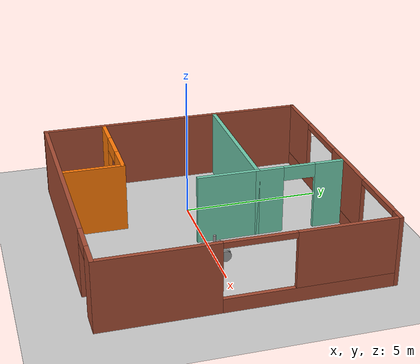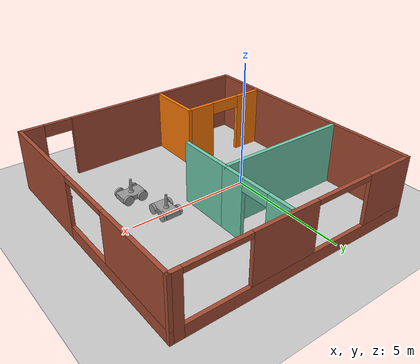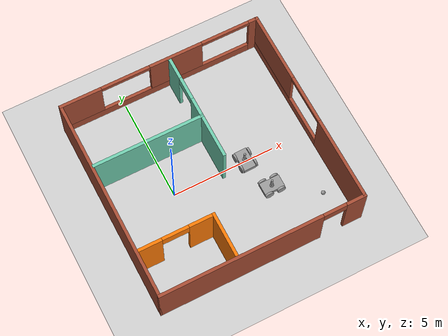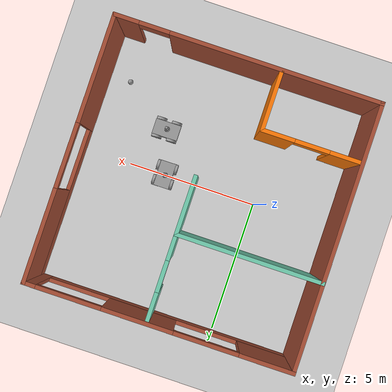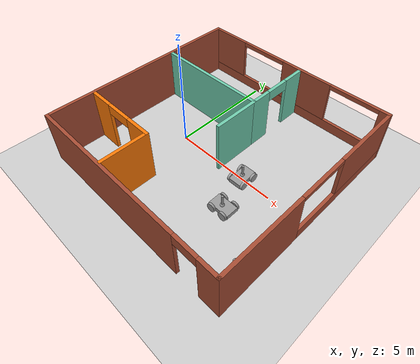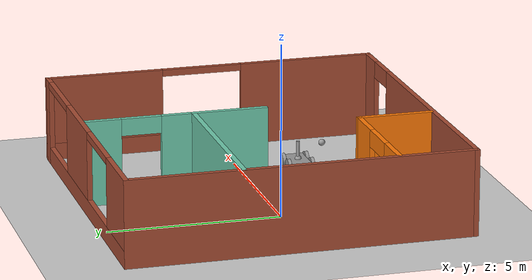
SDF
<sdf version="1.7">
 <world name="default">
  <plugin name="hello" filename="libhello.so"/>
  <light name="sun" type="directional">
   <pose>0 0 10 0 -0 0</pose>
   <diffuse>0.8 0.8 0.8 1</diffuse>
   <specular>0.2 0.2 0.2 1</specular>
   <attenuation>
    <range>1000</range>
    <constant>0.9</constant>
    <linear>0.01</linear>
    <quadratic>0.001</quadratic>
   </attenuation>
   <direction>-0.5 0.1 -0.9</direction>
   <spot><inner_angle>0</inner_angle><outer_angle>0</outer_angle><falloff>0</falloff></spot>
  </light>
  <model name="ground_plane">
   <static>1</static>
   <link name="link">
    <collision name="collision">
     <geometry><plane><normal>0 0 1</normal><size>100 100</size></plane></geometry>
     <surface>
      <contact><collide_bitmask>65535</collide_bitmask></contact>
      <friction><ode><mu>100</mu><mu2>50</mu2></ode></friction>
     </surface>
    </collision>
    <visual name="visual">
     <cast_shadows>0</cast_shadows>
     <geometry><plane><normal>0 0 1</normal><size>100 100</size></plane></geometry>
     <material>
      <script><uri>file://media/materials/scripts/gazebo.material</uri><name>Gazebo/Grey</name></script>
     </material>
    </visual>
   </link>
  </model>
  <gravity>0 0 -9.8</gravity>
  <magnetic_field>6e-06 2.3e-05 -4.2e-05</magnetic_field>
  <atmosphere type="adiabatic"/>
  <physics type="ode">
   <max_step_size>0.001</max_step_size>
   <real_time_factor>1</real_time_factor>
   <real_time_update_rate>1000</real_time_update_rate>
  </physics>
  <scene><ambient>0.4 0.4 0.4 1</ambient><background>0.7 0.7 0.7 1</background><shadows>1</shadows></scene>
  <spherical_coordinates>
   <surface_model>EARTH_WGS84</surface_model>
   <latitude_deg>0</latitude_deg>
   <longitude_deg>0</longitude_deg>
   <elevation>0</elevation>
   <heading_deg>0</heading_deg>
  </spherical_coordinates>
  <model name="Building">
   <pose>1.94951 0.22259 0 0 -0 0</pose>
   <link name="Wall_10">
    <pose>-0 4.925 0 0 -0 3.14159</pose>
    <visual name="Wall_10_Visual_0">
     <pose>-4.74655 0 1.25 0 -0 0</pose>
     <geometry><box><size>0.506908 0.15 2.5</size></box></geometry>
     <material>
      <script><uri>file://media/materials/scripts/gazebo.material</uri><name>Gazebo/Bricks</name></script>
      <ambient>1 1 1 1</ambient>
     </material>
     <meta><layer>0</layer></meta>
    </visual>
    <collision name="Wall_10_Collision_0">
     <geometry><box><size>0.506908 0.15 2.5</size></box></geometry>
     <pose>-4.74655 0 1.25 0 -0 0</pose>
    </collision>
    <visual name="Wall_10_Visual_1">
     <pose>0.253454 0 0.25 0 -0 0</pose>
     <geometry><box><size>9.49309 0.15 0.5</size></box></geometry>
     <material>
      <script><uri>file://media/materials/scripts/gazebo.material</uri><name>Gazebo/Bricks</name></script>
      <ambient>1 1 1 1</ambient>
     </material>
     <meta><layer>0</layer></meta>
    </visual>
    <collision name="Wall_10_Collision_1">
     <geometry><box><size>9.49309 0.15 0.5</size></box></geometry>
     <pose>0.253454 0 0.25 0 -0 0</pose>
    </collision>
    <visual name="Wall_10_Visual_2">
     <pose>-0.778092 0 1.5 0 -0 0</pose>
     <geometry><box><size>2.63 0.15 2</size></box></geometry>
     <material>
      <script><uri>file://media/materials/scripts/gazebo.material</uri><name>Gazebo/Bricks</name></script>
      <ambient>1 1 1 1</ambient>
     </material>
     <meta><layer>0</layer></meta>
    </visual>
    <collision name="Wall_10_Collision_2">
     <geometry><box><size>2.63 0.15 2</size></box></geometry>
     <pose>-0.778092 0 1.5 0 -0 0</pose>
    </collision>
    <visual name="Wall_10_Visual_3">
     <pose>3.96845 0 1.5 0 -0 0</pose>
     <geometry><box><size>2.06309 0.15 2</size></box></geometry>
     <material>
      <script><uri>file://media/materials/scripts/gazebo.material</uri><name>Gazebo/Bricks</name></script>
      <ambient>1 1 1 1</ambient>
     </material>
     <meta><layer>0</layer></meta>
    </visual>
    <collision name="Wall_10_Collision_3">
     <geometry><box><size>2.06309 0.15 2</size></box></geometry>
     <pose>3.96845 0 1.5 0 -0 0</pose>
    </collision>
    <visual name="Wall_10_Visual_4">
     <pose>-3.29309 0 2.4 0 -0 0</pose>
     <geometry><box><size>2.4 0.15 0.2</size></box></geometry>
     <material>
      <script><uri>file://media/materials/scripts/gazebo.material</uri><name>Gazebo/Bricks</name></script>
      <ambient>1 1 1 1</ambient>
     </material>
     <meta><layer>0</layer></meta>
    </visual>
    <collision name="Wall_10_Collision_4">
     <geometry><box><size>2.4 0.15 0.2</size></box></geometry>
     <pose>-3.29309 0 2.4 0 -0 0</pose>
    </collision>
    <visual name="Wall_10_Visual_5">
     <pose>1.73691 0 2.4 0 -0 0</pose>
     <geometry><box><size>2.4 0.15 0.2</size></box></geometry>
     <material>
      <script><uri>file://media/materials/scripts/gazebo.material</uri><name>Gazebo/Bricks</name></script>
      <ambient>1 1 1 1</ambient>
     </material>
     <meta><layer>0</layer></meta>
    </visual>
    <collision name="Wall_10_Collision_5">
     <geometry><box><size>2.4 0.15 0.2</size></box></geometry>
     <pose>1.73691 0 2.4 0 -0 0</pose>
    </collision>
   </link>
   <link name="Wall_12">
    <collision name="Wall_12_Collision">
     <geometry><box><size>10 0.15 2.5</size></box></geometry>
     <pose>0 0 1.25 0 -0 0</pose>
    </collision>
    <visual name="Wall_12_Visual">
     <pose>0 0 1.25 0 -0 0</pose>
     <geometry><box><size>10 0.15 2.5</size></box></geometry>
     <material>
      <script><uri>file://media/materials/scripts/gazebo.material</uri><name>Gazebo/Bricks</name></script>
      <ambient>1 1 1 1</ambient>
     </material>
     <meta><layer>0</layer></meta>
    </visual>
    <pose>-4.925 -0 0 0 -0 1.5708</pose>
   </link>
   <link name="Wall_22">
    <pose>-3.0416 -2.72457 0 0 -0 0</pose>
    <visual name="Wall_22_Visual_0">
     <pose>-1.27765 0 1.25 0 -0 0</pose>
     <geometry><box><size>1.19469 0.15 2.5</size></box></geometry>
     <material>
      <script><uri>file://media/materials/scripts/gazebo.material</uri><name>Gazebo/Grey</name></script>
      <ambient>0.996078 0.47451 0.0196078 1</ambient>
     </material>
     <meta><layer>0</layer></meta>
    </visual>
    <collision name="Wall_22_Collision_0">
     <geometry><box><size>1.19469 0.15 2.5</size></box></geometry>
     <pose>-1.27765 0 1.25 0 -0 0</pose>
    </collision>
    <visual name="Wall_22_Visual_1">
     <pose>1.23734 0 1.25 0 -0 0</pose>
     <geometry><box><size>1.27531 0.15 2.5</size></box></geometry>
     <material>
      <script><uri>file://media/materials/scripts/gazebo.material</uri><name>Gazebo/Grey</name></script>
      <ambient>0.996078 0.47451 0.0196078 1</ambient>
     </material>
     <meta><layer>0</layer></meta>
    </visual>
    <collision name="Wall_22_Collision_1">
     <geometry><box><size>1.27531 0.15 2.5</size></box></geometry>
     <pose>1.23734 0 1.25 0 -0 0</pose>
    </collision>
    <visual name="Wall_22_Visual_2">
     <pose>-0.040311 0 2.25 0 -0 0</pose>
     <geometry><box><size>1.28 0.15 0.5</size></box></geometry>
     <material>
      <script><uri>file://media/materials/scripts/gazebo.material</uri><name>Gazebo/Grey</name></script>
      <ambient>0.996078 0.47451 0.0196078 1</ambient>
     </material>
     <meta><layer>0</layer></meta>
    </visual>
    <collision name="Wall_22_Collision_2">
     <geometry><box><size>1.28 0.15 0.5</size></box></geometry>
     <pose>-0.040311 0 2.25 0 -0 0</pose>
    </collision>
   </link>
   <link name="Wall_27">
    <collision name="Wall_27_Collision">
     <geometry><box><size>2.25 0.15 2.5</size></box></geometry>
     <pose>0 0 1.25 0 -0 0</pose>
    </collision>
    <visual name="Wall_27_Visual">
     <pose>0 0 1.25 0 -0 0</pose>
     <geometry><box><size>2.25 0.15 2.5</size></box></geometry>
     <material>
      <script><uri>file://media/materials/scripts/gazebo.material</uri><name>Gazebo/Grey</name></script>
      <ambient>0.996078 0.47451 0.0196078 1</ambient>
     </material>
     <meta><layer>0</layer></meta>
    </visual>
    <pose>-1.2416 -3.77457 0 0 -0 -1.5708</pose>
   </link>
   <link name="Wall_29">
    <collision name="Wall_29_Collision">
     <geometry><box><size>5.5 0.15 2.5</size></box></geometry>
     <pose>0 0 1.25 0 -0 0</pose>
    </collision>
    <visual name="Wall_29_Visual">
     <pose>0 0 1.25 0 -0 0</pose>
     <geometry><box><size>5.5 0.15 2.5</size></box></geometry>
     <material>
      <script><uri>file://media/materials/scripts/gazebo.material</uri><name>Gazebo/Grey</name></script>
      <ambient>0.435294 0.796078 0.67451 1</ambient>
     </material>
     <meta><layer>0</layer></meta>
    </visual>
    <pose>-2.23191 1.66808 0 0 -0 0</pose>
   </link>
   <link name="Wall_3">
    <pose>-0 -4.925 0 0 -0 0</pose>
    <visual name="Wall_3_Visual_0">
     <pose>-1.05345 0 1.25 0 -0 0</pose>
     <geometry><box><size>7.89309 0.15 2.5</size></box></geometry>
     <material>
      <script><uri>file://media/materials/scripts/gazebo.material</uri><name>Gazebo/Bricks</name></script>
      <ambient>1 1 1 1</ambient>
     </material>
     <meta><layer>0</layer></meta>
    </visual>
    <collision name="Wall_3_Collision_0">
     <geometry><box><size>7.89309 0.15 2.5</size></box></geometry>
     <pose>-1.05345 0 1.25 0 -0 0</pose>
    </collision>
    <visual name="Wall_3_Visual_1">
     <pose>4.51155 0 1.25 0 -0 0</pose>
     <geometry><box><size>0.976908 0.15 2.5</size></box></geometry>
     <material>
      <script><uri>file://media/materials/scripts/gazebo.material</uri><name>Gazebo/Bricks</name></script>
      <ambient>1 1 1 1</ambient>
     </material>
     <meta><layer>0</layer></meta>
    </visual>
    <collision name="Wall_3_Collision_1">
     <geometry><box><size>0.976908 0.15 2.5</size></box></geometry>
     <pose>4.51155 0 1.25 0 -0 0</pose>
    </collision>
    <visual name="Wall_3_Visual_2">
     <pose>3.45809 0 2.25 0 -0 0</pose>
     <geometry><box><size>1.13 0.15 0.5</size></box></geometry>
     <material>
      <script><uri>file://media/materials/scripts/gazebo.material</uri><name>Gazebo/Bricks</name></script>
      <ambient>1 1 1 1</ambient>
     </material>
     <meta><layer>0</layer></meta>
    </visual>
    <collision name="Wall_3_Collision_2">
     <geometry><box><size>1.13 0.15 0.5</size></box></geometry>
     <pose>3.45809 0 2.25 0 -0 0</pose>
    </collision>
   </link>
   <link name="Wall_31">
    <collision name="Wall_31_Collision">
     <geometry><box><size>2.25 0.15 2.5</size></box></geometry>
     <pose>0 0 1.25 0 -0 0</pose>
    </collision>
    <visual name="Wall_31_Visual">
     <pose>0 0 1.25 0 -0 0</pose>
     <geometry><box><size>2.25 0.15 2.5</size></box></geometry>
     <material>
      <script><uri>file://media/materials/scripts/gazebo.material</uri><name>Gazebo/Grey</name></script>
      <ambient>0.435294 0.796078 0.67451 1</ambient>
     </material>
     <meta><layer>0</layer></meta>
    </visual>
    <pose>0.443092 0.618082 0 0 -0 -1.5708</pose>
   </link>
   <link name="Wall_34">
    <pose>0.443092 3.21808 0 0 -0 1.5708</pose>
    <visual name="Wall_34_Visual_0">
     <pose>-1.11 0 1.25 0 -0 0</pose>
     <geometry><box><size>1.03 0.15 2.5</size></box></geometry>
     <material>
      <script><uri>file://media/materials/scripts/gazebo.material</uri><name>Gazebo/Grey</name></script>
      <ambient>0.435294 0.796078 0.67451 1</ambient>
     </material>
     <meta><layer>0</layer></meta>
    </visual>
    <collision name="Wall_34_Collision_0">
     <geometry><box><size>1.03 0.15 2.5</size></box></geometry>
     <pose>-1.11 0 1.25 0 -0 0</pose>
    </collision>
    <visual name="Wall_34_Visual_1">
     <pose>1.095 0 1.25 0 -0 0</pose>
     <geometry><box><size>1.06 0.15 2.5</size></box></geometry>
     <material>
      <script><uri>file://media/materials/scripts/gazebo.material</uri><name>Gazebo/Grey</name></script>
      <ambient>0.435294 0.796078 0.67451 1</ambient>
     </material>
     <meta><layer>0</layer></meta>
    </visual>
    <collision name="Wall_34_Collision_1">
     <geometry><box><size>1.06 0.15 2.5</size></box></geometry>
     <pose>1.095 0 1.25 0 -0 0</pose>
    </collision>
    <visual name="Wall_34_Visual_2">
     <pose>-0.015 0 2.25 0 -0 0</pose>
     <geometry><box><size>1.16 0.15 0.5</size></box></geometry>
     <material>
      <script><uri>file://media/materials/scripts/gazebo.material</uri><name>Gazebo/Grey</name></script>
      <ambient>0.435294 0.796078 0.67451 1</ambient>
     </material>
     <meta><layer>0</layer></meta>
    </visual>
    <collision name="Wall_34_Collision_2">
     <geometry><box><size>1.16 0.15 0.5</size></box></geometry>
     <pose>-0.015 0 2.25 0 -0 0</pose>
    </collision>
   </link>
   <link name="Wall_8">
    <pose>4.925 -0 0 0 -0 1.5708</pose>
    <visual name="Wall_8_Visual_0">
     <pose>-2.96129 0 1.25 0 -0 0</pose>
     <geometry><box><size>4.07741 0.15 2.5</size></box></geometry>
     <material>
      <script><uri>file://media/materials/scripts/gazebo.material</uri><name>Gazebo/Bricks</name></script>
      <ambient>1 1 1 1</ambient>
     </material>
     <meta><layer>0</layer></meta>
    </visual>
    <collision name="Wall_8_Collision_0">
     <geometry><box><size>4.07741 0.15 2.5</size></box></geometry>
     <pose>-2.96129 0 1.25 0 -0 0</pose>
    </collision>
    <visual name="Wall_8_Visual_1">
     <pose>2.03871 0 0.25 0 -0 0</pose>
     <geometry><box><size>5.92259 0.15 0.5</size></box></geometry>
     <material>
      <script><uri>file://media/materials/scripts/gazebo.material</uri><name>Gazebo/Bricks</name></script>
      <ambient>1 1 1 1</ambient>
     </material>
     <meta><layer>0</layer></meta>
    </visual>
    <collision name="Wall_8_Collision_1">
     <geometry><box><size>5.92259 0.15 0.5</size></box></geometry>
     <pose>2.03871 0 0.25 0 -0 0</pose>
    </collision>
    <visual name="Wall_8_Visual_2">
     <pose>3.23871 0 1.5 0 -0 0</pose>
     <geometry><box><size>3.52259 0.15 2</size></box></geometry>
     <material>
      <script><uri>file://media/materials/scripts/gazebo.material</uri><name>Gazebo/Bricks</name></script>
      <ambient>1 1 1 1</ambient>
     </material>
     <meta><layer>0</layer></meta>
    </visual>
    <collision name="Wall_8_Collision_2">
     <geometry><box><size>3.52259 0.15 2</size></box></geometry>
     <pose>3.23871 0 1.5 0 -0 0</pose>
    </collision>
    <visual name="Wall_8_Visual_3">
     <pose>0.277413 0 2.4 0 -0 0</pose>
     <geometry><box><size>2.4 0.15 0.2</size></box></geometry>
     <material>
      <script><uri>file://media/materials/scripts/gazebo.material</uri><name>Gazebo/Bricks</name></script>
      <ambient>1 1 1 1</ambient>
     </material>
     <meta><layer>0</layer></meta>
    </visual>
    <collision name="Wall_8_Collision_3">
     <geometry><box><size>2.4 0.15 0.2</size></box></geometry>
     <pose>0.277413 0 2.4 0 -0 0</pose>
    </collision>
   </link>
   <static>1</static>
  </model>
  <model name="Robot">
   <link name="link_0">
    <inertial>
     <mass>1</mass>
     <inertia>
      <ixx>0.166667</ixx>
      <ixy>0</ixy>
      <ixz>0</ixz>
      <iyy>0.166667</iyy>
      <iyz>0</iyz>
      <izz>0.166667</izz>
     </inertia>
    </inertial>
    <pose>0.185783 -0.0593 -0.013458 0 -0 0</pose>
    <visual name="visual">
     <geometry><box><size>1 0.6 0.2</size></box></geometry>
     <material>
      <lighting>1</lighting>
      <script><uri>file://media/materials/scripts/gazebo.material</uri><name>Gazebo/Grey</name></script>
      <shader type="pixel"><normal_map>__default__</normal_map></shader>
      <ambient>0.3 0.3 0.3 1</ambient>
      <diffuse>0.7 0.7 0.7 1</diffuse>
      <specular>0.01 0.01 0.01 1</specular>
      <emissive>0 0 0 1</emissive>
     </material>
    </visual>
    <collision name="collision">
     <geometry><box><size>1 0.6 0.2</size></box></geometry>
     <surface>
      <friction>
       <ode><mu>1</mu><mu2>1</mu2><fdir1>0 0 0</fdir1><slip1>0</slip1><slip2>0</slip2></ode>
       <torsional>
        <coefficient>1</coefficient>
        <patch_radius>0</patch_radius>
        <surface_radius>0</surface_radius>
        <use_patch_radius>1</use_patch_radius>
        <ode><slip>0</slip></ode>
       </torsional>
      </friction>
      <bounce><restitution_coefficient>0</restitution_coefficient><threshold>1e+06</threshold></bounce>
      <contact>
       <collide_without_contact>0</collide_without_contact>
       <collide_without_contact_bitmask>1</collide_without_contact_bitmask>
       <collide_bitmask>1</collide_bitmask>
       <ode>
        <soft_cfm>0</soft_cfm>
        <soft_erp>0.2</soft_erp>
        <kp>1e+13</kp>
        <kd>1</kd>
        <max_vel>0.01</max_vel>
        <min_depth>0</min_depth>
       </ode>
       <bullet>
        <split_impulse>1</split_impulse>
        <split_impulse_penetration_threshold>-0.01</split_impulse_penetration_threshold>
        <soft_cfm>0</soft_cfm>
        <soft_erp>0.2</soft_erp>
        <kp>1e+13</kp>
        <kd>1</kd>
       </bullet>
      </contact>
     </surface>
    </collision>
   </link>
   <link name="link_1">
    <inertial>
     <mass>1</mass>
     <inertia><ixx>0.145833</ixx><ixy>0</ixy><ixz>0</ixz><iyy>0.145833</iyy><iyz>0</iyz><izz>0.125</izz></inertia>
    </inertial>
    <pose>-0.114217 -0.40932 -0.013458 1.5707 -0 0</pose>
    <visual name="visual">
     <geometry><cylinder><radius>0.2</radius><length>0.1</length></cylinder></geometry>
     <material>
      <lighting>1</lighting>
      <script><uri>file://media/materials/scripts/gazebo.material</uri><name>Gazebo/Grey</name></script>
      <shader type="pixel"><normal_map>__default__</normal_map></shader>
      <ambient>0.3 0.3 0.3 1</ambient>
      <diffuse>0.7 0.7 0.7 1</diffuse>
      <specular>0.01 0.01 0.01 1</specular>
      <emissive>0 0 0 1</emissive>
     </material>
    </visual>
    <collision name="collision">
     <geometry><cylinder><radius>0.2</radius><length>0.1</length></cylinder></geometry>
     <surface>
      <friction>
       <ode><mu>1</mu><mu2>1</mu2><fdir1>0 0 0</fdir1><slip1>0</slip1><slip2>0</slip2></ode>
       <torsional>
        <coefficient>1</coefficient>
        <patch_radius>0</patch_radius>
        <surface_radius>0</surface_radius>
        <use_patch_radius>1</use_patch_radius>
        <ode><slip>0</slip></ode>
       </torsional>
      </friction>
      <bounce><restitution_coefficient>0</restitution_coefficient><threshold>1e+06</threshold></bounce>
      <contact>
       <collide_without_contact>0</collide_without_contact>
       <collide_without_contact_bitmask>1</collide_without_contact_bitmask>
       <collide_bitmask>1</collide_bitmask>
       <ode>
        <soft_cfm>0</soft_cfm>
        <soft_erp>0.2</soft_erp>
        <kp>1e+13</kp>
        <kd>1</kd>
        <max_vel>0.01</max_vel>
        <min_depth>0</min_depth>
       </ode>
       <bullet>
        <split_impulse>1</split_impulse>
        <split_impulse_penetration_threshold>-0.01</split_impulse_penetration_threshold>
        <soft_cfm>0</soft_cfm>
        <soft_erp>0.2</soft_erp>
        <kp>1e+13</kp>
        <kd>1</kd>
       </bullet>
      </contact>
     </surface>
    </collision>
   </link>
   <link name="link_1_clone">
    <inertial>
     <mass>1</mass>
     <inertia><ixx>0.145833</ixx><ixy>0</ixy><ixz>0</ixz><iyy>0.145833</iyy><iyz>0</iyz><izz>0.125</izz></inertia>
    </inertial>
    <pose>0.485783 -0.40932 -0.013458 1.5707 -0 0</pose>
    <visual name="visual">
     <geometry><cylinder><radius>0.2</radius><length>0.1</length></cylinder></geometry>
     <material>
      <lighting>1</lighting>
      <script><uri>file://media/materials/scripts/gazebo.material</uri><name>Gazebo/Grey</name></script>
      <shader type="pixel"><normal_map>__default__</normal_map></shader>
      <ambient>0.3 0.3 0.3 1</ambient>
      <diffuse>0.7 0.7 0.7 1</diffuse>
      <specular>0.01 0.01 0.01 1</specular>
      <emissive>0 0 0 1</emissive>
     </material>
    </visual>
    <collision name="collision">
     <geometry><cylinder><radius>0.2</radius><length>0.1</length></cylinder></geometry>
     <surface>
      <friction>
       <ode><mu>1</mu><mu2>1</mu2><fdir1>0 0 0</fdir1><slip1>0</slip1><slip2>0</slip2></ode>
       <torsional>
        <coefficient>1</coefficient>
        <patch_radius>0</patch_radius>
        <surface_radius>0</surface_radius>
        <use_patch_radius>1</use_patch_radius>
        <ode><slip>0</slip></ode>
       </torsional>
      </friction>
      <bounce><restitution_coefficient>0</restitution_coefficient><threshold>1e+06</threshold></bounce>
      <contact>
       <collide_without_contact>0</collide_without_contact>
       <collide_without_contact_bitmask>1</collide_without_contact_bitmask>
       <collide_bitmask>1</collide_bitmask>
       <ode>
        <soft_cfm>0</soft_cfm>
        <soft_erp>0.2</soft_erp>
        <kp>1e+13</kp>
        <kd>1</kd>
        <max_vel>0.01</max_vel>
        <min_depth>0</min_depth>
       </ode>
       <bullet>
        <split_impulse>1</split_impulse>
        <split_impulse_penetration_threshold>-0.01</split_impulse_penetration_threshold>
        <soft_cfm>0</soft_cfm>
        <soft_erp>0.2</soft_erp>
        <kp>1e+13</kp>
        <kd>1</kd>
       </bullet>
      </contact>
     </surface>
    </collision>
   </link>
   <link name="link_1_clone_0">
    <inertial>
     <mass>1</mass>
     <inertia><ixx>0.145833</ixx><ixy>0</ixy><ixz>0</ixz><iyy>0.145833</iyy><iyz>0</iyz><izz>0.125</izz></inertia>
    </inertial>
    <pose>-0.114217 0.290719 -0.013458 1.5707 -0 0</pose>
    <visual name="visual">
     <geometry><cylinder><radius>0.2</radius><length>0.1</length></cylinder></geometry>
     <material>
      <lighting>1</lighting>
      <script><uri>file://media/materials/scripts/gazebo.material</uri><name>Gazebo/Grey</name></script>
      <shader type="pixel"><normal_map>__default__</normal_map></shader>
      <ambient>0.3 0.3 0.3 1</ambient>
      <diffuse>0.7 0.7 0.7 1</diffuse>
      <specular>0.01 0.01 0.01 1</specular>
      <emissive>0 0 0 1</emissive>
     </material>
    </visual>
    <collision name="collision">
     <geometry><cylinder><radius>0.2</radius><length>0.1</length></cylinder></geometry>
     <surface>
      <friction>
       <ode><mu>1</mu><mu2>1</mu2><fdir1>0 0 0</fdir1><slip1>0</slip1><slip2>0</slip2></ode>
       <torsional>
        <coefficient>1</coefficient>
        <patch_radius>0</patch_radius>
        <surface_radius>0</surface_radius>
        <use_patch_radius>1</use_patch_radius>
        <ode><slip>0</slip></ode>
       </torsional>
      </friction>
      <bounce><restitution_coefficient>0</restitution_coefficient><threshold>1e+06</threshold></bounce>
      <contact>
       <collide_without_contact>0</collide_without_contact>
       <collide_without_contact_bitmask>1</collide_without_contact_bitmask>
       <collide_bitmask>1</collide_bitmask>
       <ode>
        <soft_cfm>0</soft_cfm>
        <soft_erp>0.2</soft_erp>
        <kp>1e+13</kp>
        <kd>1</kd>
        <max_vel>0.01</max_vel>
        <min_depth>0</min_depth>
       </ode>
       <bullet>
        <split_impulse>1</split_impulse>
        <split_impulse_penetration_threshold>-0.01</split_impulse_penetration_threshold>
        <soft_cfm>0</soft_cfm>
        <soft_erp>0.2</soft_erp>
        <kp>1e+13</kp>
        <kd>1</kd>
       </bullet>
      </contact>
     </surface>
    </collision>
   </link>
   <link name="link_1_clone_1">
    <inertial>
     <mass>1</mass>
     <inertia><ixx>0.145833</ixx><ixy>0</ixy><ixz>0</ixz><iyy>0.145833</iyy><iyz>0</iyz><izz>0.125</izz></inertia>
    </inertial>
    <pose>0.485783 0.290719 -0.013458 1.5707 -0 0</pose>
    <visual name="visual">
     <geometry><cylinder><radius>0.2</radius><length>0.1</length></cylinder></geometry>
     <material>
      <lighting>1</lighting>
      <script><uri>file://media/materials/scripts/gazebo.material</uri><name>Gazebo/Grey</name></script>
      <shader type="pixel"><normal_map>__default__</normal_map></shader>
      <ambient>0.3 0.3 0.3 1</ambient>
      <diffuse>0.7 0.7 0.7 1</diffuse>
      <specular>0.01 0.01 0.01 1</specular>
      <emissive>0 0 0 1</emissive>
     </material>
    </visual>
    <collision name="collision">
     <geometry><cylinder><radius>0.2</radius><length>0.1</length></cylinder></geometry>
     <surface>
      <friction>
       <ode><mu>1</mu><mu2>1</mu2><fdir1>0 0 0</fdir1><slip1>0</slip1><slip2>0</slip2></ode>
       <torsional>
        <coefficient>1</coefficient>
        <patch_radius>0</patch_radius>
        <surface_radius>0</surface_radius>
        <use_patch_radius>1</use_patch_radius>
        <ode><slip>0</slip></ode>
       </torsional>
      </friction>
      <bounce><restitution_coefficient>0</restitution_coefficient><threshold>1e+06</threshold></bounce>
      <contact>
       <collide_without_contact>0</collide_without_contact>
       <collide_without_contact_bitmask>1</collide_without_contact_bitmask>
       <collide_bitmask>1</collide_bitmask>
       <ode>
        <soft_cfm>0</soft_cfm>
        <soft_erp>0.2</soft_erp>
        <kp>1e+13</kp>
        <kd>1</kd>
        <max_vel>0.01</max_vel>
        <min_depth>0</min_depth>
       </ode>
       <bullet>
        <split_impulse>1</split_impulse>
        <split_impulse_penetration_threshold>-0.01</split_impulse_penetration_threshold>
        <soft_cfm>0</soft_cfm>
        <soft_erp>0.2</soft_erp>
        <kp>1e+13</kp>
        <kd>1</kd>
       </bullet>
      </contact>
     </surface>
    </collision>
   </link>
   <link name="link_2">
    <inertial>
     <mass>1</mass>
     <inertia><ixx>0.1</ixx><ixy>0</ixy><ixz>0</ixz><iyy>0.1</iyy><iyz>0</iyz><izz>0.1</izz></inertia>
    </inertial>
    <pose>0.165783 -0.0793 0.086542 0 -0 0</pose>
    <visual name="visual">
     <geometry><sphere><radius>0.1</radius></sphere></geometry>
     <material>
      <lighting>1</lighting>
      <script><uri>file://media/materials/scripts/gazebo.material</uri><name>Gazebo/Grey</name></script>
      <shader type="pixel"><normal_map>__default__</normal_map></shader>
      <ambient>0.3 0.3 0.3 1</ambient>
      <diffuse>0.7 0.7 0.7 1</diffuse>
      <specular>0.01 0.01 0.01 1</specular>
      <emissive>0 0 0 1</emissive>
     </material>
    </visual>
    <collision name="collision">
     <geometry><sphere><radius>0.1</radius></sphere></geometry>
     <surface>
      <friction>
       <ode><mu>1</mu><mu2>1</mu2><fdir1>0 0 0</fdir1><slip1>0</slip1><slip2>0</slip2></ode>
       <torsional>
        <coefficient>1</coefficient>
        <patch_radius>0</patch_radius>
        <surface_radius>0</surface_radius>
        <use_patch_radius>1</use_patch_radius>
        <ode><slip>0</slip></ode>
       </torsional>
      </friction>
      <bounce><restitution_coefficient>0</restitution_coefficient><threshold>1e+06</threshold></bounce>
      <contact>
       <collide_without_contact>0</collide_without_contact>
       <collide_without_contact_bitmask>1</collide_without_contact_bitmask>
       <collide_bitmask>1</collide_bitmask>
       <ode>
        <soft_cfm>0</soft_cfm>
        <soft_erp>0.2</soft_erp>
        <kp>1e+13</kp>
        <kd>1</kd>
        <max_vel>0.01</max_vel>
        <min_depth>0</min_depth>
       </ode>
       <bullet>
        <split_impulse>1</split_impulse>
        <split_impulse_penetration_threshold>-0.01</split_impulse_penetration_threshold>
        <soft_cfm>0</soft_cfm>
        <soft_erp>0.2</soft_erp>
        <kp>1e+13</kp>
        <kd>1</kd>
       </bullet>
      </contact>
     </surface>
    </collision>
   </link>
   <link name="link_3">
    <inertial>
     <mass>1</mass>
     <inertia><ixx>0.145833</ixx><ixy>0</ixy><ixz>0</ixz><iyy>0.145833</iyy><iyz>0</iyz><izz>0.125</izz></inertia>
    </inertial>
    <pose>0.163895 -0.074346 0.380751 0 -0 0</pose>
    <visual name="visual">
     <geometry><cylinder><radius>0.05</radius><length>0.5</length></cylinder></geometry>
     <material>
      <lighting>1</lighting>
      <script><uri>file://media/materials/scripts/gazebo.material</uri><name>Gazebo/Grey</name></script>
      <shader type="pixel"><normal_map>__default__</normal_map></shader>
      <ambient>0.3 0.3 0.3 1</ambient>
      <diffuse>0.7 0.7 0.7 1</diffuse>
      <specular>0.01 0.01 0.01 1</specular>
      <emissive>0 0 0 1</emissive>
     </material>
    </visual>
    <collision name="collision">
     <geometry><cylinder><radius>0.05</radius><length>0.5</length></cylinder></geometry>
     <surface>
      <friction>
       <ode><mu>1</mu><mu2>1</mu2><fdir1>0 0 0</fdir1><slip1>0</slip1><slip2>0</slip2></ode>
       <torsional>
        <coefficient>1</coefficient>
        <patch_radius>0</patch_radius>
        <surface_radius>0</surface_radius>
        <use_patch_radius>1</use_patch_radius>
        <ode><slip>0</slip></ode>
       </torsional>
      </friction>
      <bounce><restitution_coefficient>0</restitution_coefficient><threshold>1e+06</threshold></bounce>
      <contact>
       <collide_without_contact>0</collide_without_contact>
       <collide_without_contact_bitmask>1</collide_without_contact_bitmask>
       <collide_bitmask>1</collide_bitmask>
       <ode>
        <soft_cfm>0</soft_cfm>
        <soft_erp>0.2</soft_erp>
        <kp>1e+13</kp>
        <kd>1</kd>
        <max_vel>0.01</max_vel>
        <min_depth>0</min_depth>
       </ode>
       <bullet>
        <split_impulse>1</split_impulse>
        <split_impulse_penetration_threshold>-0.01</split_impulse_penetration_threshold>
        <soft_cfm>0</soft_cfm>
        <soft_erp>0.2</soft_erp>
        <kp>1e+13</kp>
        <kd>1</kd>
       </bullet>
      </contact>
     </surface>
    </collision>
   </link>
   <joint name="link_0_JOINT_0" type="revolute">
    <parent>link_0</parent>
    <child>link_1</child>
    <axis>
     <xyz>0 0 1</xyz>
     <limit>
      <lower>-1.79769e+308</lower>
      <upper>1.79769e+308</upper>
      <effort>-1</effort>
      <velocity>-1</velocity>
     </limit>
     <dynamics>
      <spring_reference>0</spring_reference>
      <spring_stiffness>0</spring_stiffness>
      <damping>0</damping>
     </dynamics>
    </axis>
    <physics>
     <ode><limit><cfm>0</cfm><erp>0.2</erp></limit><suspension><cfm>0</cfm><erp>0.2</erp></suspension></ode>
    </physics>
   </joint>
   <joint name="link_0_JOINT_1" type="revolute">
    <parent>link_0</parent>
    <child>link_1_clone</child>
    <axis>
     <xyz>0 0 1</xyz>
     <limit>
      <lower>-1.79769e+308</lower>
      <upper>1.79769e+308</upper>
      <effort>-1</effort>
      <velocity>-1</velocity>
     </limit>
     <dynamics>
      <spring_reference>0</spring_reference>
      <spring_stiffness>0</spring_stiffness>
      <damping>0</damping>
     </dynamics>
    </axis>
    <physics>
     <ode><limit><cfm>0</cfm><erp>0.2</erp></limit><suspension><cfm>0</cfm><erp>0.2</erp></suspension></ode>
    </physics>
   </joint>
   <joint name="link_0_JOINT_2" type="revolute">
    <parent>link_0</parent>
    <child>link_1_clone_0</child>
    <axis>
     <xyz>0 0 1</xyz>
     <limit>
      <lower>-1.79769e+308</lower>
      <upper>1.79769e+308</upper>
      <effort>-1</effort>
      <velocity>-1</velocity>
     </limit>
     <dynamics>
      <spring_reference>0</spring_reference>
      <spring_stiffness>0</spring_stiffness>
      <damping>0</damping>
     </dynamics>
    </axis>
    <physics>
     <ode><limit><cfm>0</cfm><erp>0.2</erp></limit><suspension><cfm>0</cfm><erp>0.2</erp></suspension></ode>
    </physics>
   </joint>
   <joint name="link_0_JOINT_3" type="revolute">
    <parent>link_0</parent>
    <child>link_1_clone_1</child>
    <axis>
     <xyz>0 0 1</xyz>
     <limit>
      <lower>-1.79769e+308</lower>
      <upper>1.79769e+308</upper>
      <effort>-1</effort>
      <velocity>-1</velocity>
     </limit>
     <dynamics>
      <spring_reference>0</spring_reference>
      <spring_stiffness>0</spring_stiffness>
      <damping>0</damping>
     </dynamics>
    </axis>
    <physics>
     <ode><limit><cfm>0</cfm><erp>0.2</erp></limit><suspension><cfm>0</cfm><erp>0.2</erp></suspension></ode>
    </physics>
   </joint>
   <joint name="link_0_JOINT_5" type="ball">
    <parent>link_0</parent>
    <child>link_2</child>
    <physics>
     <ode><limit><cfm>0</cfm><erp>0.2</erp></limit><suspension><cfm>0</cfm><erp>0.2</erp></suspension></ode>
    </physics>
   </joint>
   <joint name="link_2_JOINT_7" type="fixed">
    <parent>link_2</parent>
    <child>link_3</child>
    <physics>
     <ode><limit><cfm>0</cfm><erp>0.2</erp></limit><suspension><cfm>0</cfm><erp>0.2</erp></suspension></ode>
    </physics>
   </joint>
   <static>0</static>
   <pose>3.89636 -1.61134 0.21346 4e-06 1.1e-05 0.00207</pose>
  </model>
  <model name="Robot_clone">
   <link name="link_0">
    <inertial>
     <mass>1</mass>
     <inertia>
      <ixx>0.166667</ixx>
      <ixy>0</ixy>
      <ixz>0</ixz>
      <iyy>0.166667</iyy>
      <iyz>0</iyz>
      <izz>0.166667</izz>
     </inertia>
    </inertial>
    <pose>0.185783 -0.0593 -0.013458 0 -0 0</pose>
    <visual name="visual">
     <geometry><box><size>1 0.6 0.2</size></box></geometry>
     <material>
      <lighting>1</lighting>
      <script><uri>file://media/materials/scripts/gazebo.material</uri><name>Gazebo/Grey</name></script>
      <shader type="pixel"><normal_map>__default__</normal_map></shader>
      <ambient>0.3 0.3 0.3 1</ambient>
      <diffuse>0.7 0.7 0.7 1</diffuse>
      <specular>0.01 0.01 0.01 1</specular>
      <emissive>0 0 0 1</emissive>
     </material>
    </visual>
    <collision name="collision">
     <geometry><box><size>1 0.6 0.2</size></box></geometry>
     <surface>
      <friction>
       <ode><mu>1</mu><mu2>1</mu2><fdir1>0 0 0</fdir1><slip1>0</slip1><slip2>0</slip2></ode>
       <torsional>
        <coefficient>1</coefficient>
        <patch_radius>0</patch_radius>
        <surface_radius>0</surface_radius>
        <use_patch_radius>1</use_patch_radius>
        <ode><slip>0</slip></ode>
       </torsional>
      </friction>
      <bounce><restitution_coefficient>0</restitution_coefficient><threshold>1e+06</threshold></bounce>
      <contact>
       <collide_without_contact>0</collide_without_contact>
       <collide_without_contact_bitmask>1</collide_without_contact_bitmask>
       <collide_bitmask>1</collide_bitmask>
       <ode>
        <soft_cfm>0</soft_cfm>
        <soft_erp>0.2</soft_erp>
        <kp>1e+13</kp>
        <kd>1</kd>
        <max_vel>0.01</max_vel>
        <min_depth>0</min_depth>
       </ode>
       <bullet>
        <split_impulse>1</split_impulse>
        <split_impulse_penetration_threshold>-0.01</split_impulse_penetration_threshold>
        <soft_cfm>0</soft_cfm>
        <soft_erp>0.2</soft_erp>
        <kp>1e+13</kp>
        <kd>1</kd>
       </bullet>
      </contact>
     </surface>
    </collision>
   </link>
   <link name="link_1">
    <inertial>
     <mass>1</mass>
     <inertia><ixx>0.145833</ixx><ixy>0</ixy><ixz>0</ixz><iyy>0.145833</iyy><iyz>0</iyz><izz>0.125</izz></inertia>
    </inertial>
    <pose>-0.114217 -0.40932 -0.013458 1.5707 -0 0</pose>
    <visual name="visual">
     <geometry><cylinder><radius>0.2</radius><length>0.1</length></cylinder></geometry>
     <material>
      <lighting>1</lighting>
      <script><uri>file://media/materials/scripts/gazebo.material</uri><name>Gazebo/Grey</name></script>
      <shader type="pixel"><normal_map>__default__</normal_map></shader>
      <ambient>0.3 0.3 0.3 1</ambient>
      <diffuse>0.7 0.7 0.7 1</diffuse>
      <specular>0.01 0.01 0.01 1</specular>
      <emissive>0 0 0 1</emissive>
     </material>
    </visual>
    <collision name="collision">
     <geometry><cylinder><radius>0.2</radius><length>0.1</length></cylinder></geometry>
     <surface>
      <friction>
       <ode><mu>1</mu><mu2>1</mu2><fdir1>0 0 0</fdir1><slip1>0</slip1><slip2>0</slip2></ode>
       <torsional>
        <coefficient>1</coefficient>
        <patch_radius>0</patch_radius>
        <surface_radius>0</surface_radius>
        <use_patch_radius>1</use_patch_radius>
        <ode><slip>0</slip></ode>
       </torsional>
      </friction>
      <bounce><restitution_coefficient>0</restitution_coefficient><threshold>1e+06</threshold></bounce>
      <contact>
       <collide_without_contact>0</collide_without_contact>
       <collide_without_contact_bitmask>1</collide_without_contact_bitmask>
       <collide_bitmask>1</collide_bitmask>
       <ode>
        <soft_cfm>0</soft_cfm>
        <soft_erp>0.2</soft_erp>
        <kp>1e+13</kp>
        <kd>1</kd>
        <max_vel>0.01</max_vel>
        <min_depth>0</min_depth>
       </ode>
       <bullet>
        <split_impulse>1</split_impulse>
        <split_impulse_penetration_threshold>-0.01</split_impulse_penetration_threshold>
        <soft_cfm>0</soft_cfm>
        <soft_erp>0.2</soft_erp>
        <kp>1e+13</kp>
        <kd>1</kd>
       </bullet>
      </contact>
     </surface>
    </collision>
   </link>
   <link name="link_1_clone">
    <inertial>
     <mass>1</mass>
     <inertia><ixx>0.145833</ixx><ixy>0</ixy><ixz>0</ixz><iyy>0.145833</iyy><iyz>0</iyz><izz>0.125</izz></inertia>
    </inertial>
    <pose>0.485783 -0.40932 -0.013458 1.5707 -0 0</pose>
    <visual name="visual">
     <geometry><cylinder><radius>0.2</radius><length>0.1</length></cylinder></geometry>
     <material>
      <lighting>1</lighting>
      <script><uri>file://media/materials/scripts/gazebo.material</uri><name>Gazebo/Grey</name></script>
      <shader type="pixel"><normal_map>__default__</normal_map></shader>
      <ambient>0.3 0.3 0.3 1</ambient>
      <diffuse>0.7 0.7 0.7 1</diffuse>
      <specular>0.01 0.01 0.01 1</specular>
      <emissive>0 0 0 1</emissive>
     </material>
    </visual>
    <collision name="collision">
     <geometry><cylinder><radius>0.2</radius><length>0.1</length></cylinder></geometry>
     <surface>
      <friction>
       <ode><mu>1</mu><mu2>1</mu2><fdir1>0 0 0</fdir1><slip1>0</slip1><slip2>0</slip2></ode>
       <torsional>
        <coefficient>1</coefficient>
        <patch_radius>0</patch_radius>
        <surface_radius>0</surface_radius>
        <use_patch_radius>1</use_patch_radius>
        <ode><slip>0</slip></ode>
       </torsional>
      </friction>
      <bounce><restitution_coefficient>0</restitution_coefficient><threshold>1e+06</threshold></bounce>
      <contact>
       <collide_without_contact>0</collide_without_contact>
       <collide_without_contact_bitmask>1</collide_without_contact_bitmask>
       <collide_bitmask>1</collide_bitmask>
       <ode>
        <soft_cfm>0</soft_cfm>
        <soft_erp>0.2</soft_erp>
        <kp>1e+13</kp>
        <kd>1</kd>
        <max_vel>0.01</max_vel>
        <min_depth>0</min_depth>
       </ode>
       <bullet>
        <split_impulse>1</split_impulse>
        <split_impulse_penetration_threshold>-0.01</split_impulse_penetration_threshold>
        <soft_cfm>0</soft_cfm>
        <soft_erp>0.2</soft_erp>
        <kp>1e+13</kp>
        <kd>1</kd>
       </bullet>
      </contact>
     </surface>
    </collision>
   </link>
   <link name="link_1_clone_0">
    <inertial>
     <mass>1</mass>
     <inertia><ixx>0.145833</ixx><ixy>0</ixy><ixz>0</ixz><iyy>0.145833</iyy><iyz>0</iyz><izz>0.125</izz></inertia>
    </inertial>
    <pose>-0.114217 0.290719 -0.013458 1.5707 -0 0</pose>
    <visual name="visual">
     <geometry><cylinder><radius>0.2</radius><length>0.1</length></cylinder></geometry>
     <material>
      <lighting>1</lighting>
      <script><uri>file://media/materials/scripts/gazebo.material</uri><name>Gazebo/Grey</name></script>
      <shader type="pixel"><normal_map>__default__</normal_map></shader>
      <ambient>0.3 0.3 0.3 1</ambient>
      <diffuse>0.7 0.7 0.7 1</diffuse>
      <specular>0.01 0.01 0.01 1</specular>
      <emissive>0 0 0 1</emissive>
     </material>
    </visual>
    <collision name="collision">
     <geometry><cylinder><radius>0.2</radius><length>0.1</length></cylinder></geometry>
     <surface>
      <friction>
       <ode><mu>1</mu><mu2>1</mu2><fdir1>0 0 0</fdir1><slip1>0</slip1><slip2>0</slip2></ode>
       <torsional>
        <coefficient>1</coefficient>
        <patch_radius>0</patch_radius>
        <surface_radius>0</surface_radius>
        <use_patch_radius>1</use_patch_radius>
        <ode><slip>0</slip></ode>
       </torsional>
      </friction>
      <bounce><restitution_coefficient>0</restitution_coefficient><threshold>1e+06</threshold></bounce>
      <contact>
       <collide_without_contact>0</collide_without_contact>
       <collide_without_contact_bitmask>1</collide_without_contact_bitmask>
       <collide_bitmask>1</collide_bitmask>
       <ode>
        <soft_cfm>0</soft_cfm>
        <soft_erp>0.2</soft_erp>
        <kp>1e+13</kp>
        <kd>1</kd>
        <max_vel>0.01</max_vel>
        <min_depth>0</min_depth>
       </ode>
       <bullet>
        <split_impulse>1</split_impulse>
        <split_impulse_penetration_threshold>-0.01</split_impulse_penetration_threshold>
        <soft_cfm>0</soft_cfm>
        <soft_erp>0.2</soft_erp>
        <kp>1e+13</kp>
        <kd>1</kd>
       </bullet>
      </contact>
     </surface>
    </collision>
   </link>
   <link name="link_1_clone_1">
    <inertial>
     <mass>1</mass>
     <inertia><ixx>0.145833</ixx><ixy>0</ixy><ixz>0</ixz><iyy>0.145833</iyy><iyz>0</iyz><izz>0.125</izz></inertia>
    </inertial>
    <pose>0.485783 0.290719 -0.013458 1.5707 -0 0</pose>
    <visual name="visual">
     <geometry><cylinder><radius>0.2</radius><length>0.1</length></cylinder></geometry>
     <material>
      <lighting>1</lighting>
      <script><uri>file://media/materials/scripts/gazebo.material</uri><name>Gazebo/Grey</name></script>
      <shader type="pixel"><normal_map>__default__</normal_map></shader>
      <ambient>0.3 0.3 0.3 1</ambient>
      <diffuse>0.7 0.7 0.7 1</diffuse>
      <specular>0.01 0.01 0.01 1</specular>
      <emissive>0 0 0 1</emissive>
     </material>
    </visual>
    <collision name="collision">
     <geometry><cylinder><radius>0.2</radius><length>0.1</length></cylinder></geometry>
     <surface>
      <friction>
       <ode><mu>1</mu><mu2>1</mu2><fdir1>0 0 0</fdir1><slip1>0</slip1><slip2>0</slip2></ode>
       <torsional>
        <coefficient>1</coefficient>
        <patch_radius>0</patch_radius>
        <surface_radius>0</surface_radius>
        <use_patch_radius>1</use_patch_radius>
        <ode><slip>0</slip></ode>
       </torsional>
      </friction>
      <bounce><restitution_coefficient>0</restitution_coefficient><threshold>1e+06</threshold></bounce>
      <contact>
       <collide_without_contact>0</collide_without_contact>
       <collide_without_contact_bitmask>1</collide_without_contact_bitmask>
       <collide_bitmask>1</collide_bitmask>
       <ode>
        <soft_cfm>0</soft_cfm>
        <soft_erp>0.2</soft_erp>
        <kp>1e+13</kp>
        <kd>1</kd>
        <max_vel>0.01</max_vel>
        <min_depth>0</min_depth>
       </ode>
       <bullet>
        <split_impulse>1</split_impulse>
        <split_impulse_penetration_threshold>-0.01</split_impulse_penetration_threshold>
        <soft_cfm>0</soft_cfm>
        <soft_erp>0.2</soft_erp>
        <kp>1e+13</kp>
        <kd>1</kd>
       </bullet>
      </contact>
     </surface>
    </collision>
   </link>
   <link name="link_2">
    <inertial>
     <mass>1</mass>
     <inertia><ixx>0.1</ixx><ixy>0</ixy><ixz>0</ixz><iyy>0.1</iyy><iyz>0</iyz><izz>0.1</izz></inertia>
    </inertial>
    <pose>0.165783 -0.0793 0.086542 0 -0 0</pose>
    <visual name="visual">
     <geometry><sphere><radius>0.1</radius></sphere></geometry>
     <material>
      <lighting>1</lighting>
      <script><uri>file://media/materials/scripts/gazebo.material</uri><name>Gazebo/Grey</name></script>
      <shader type="pixel"><normal_map>__default__</normal_map></shader>
      <ambient>0.3 0.3 0.3 1</ambient>
      <diffuse>0.7 0.7 0.7 1</diffuse>
      <specular>0.01 0.01 0.01 1</specular>
      <emissive>0 0 0 1</emissive>
     </material>
    </visual>
    <collision name="collision">
     <geometry><sphere><radius>0.1</radius></sphere></geometry>
     <surface>
      <friction>
       <ode><mu>1</mu><mu2>1</mu2><fdir1>0 0 0</fdir1><slip1>0</slip1><slip2>0</slip2></ode>
       <torsional>
        <coefficient>1</coefficient>
        <patch_radius>0</patch_radius>
        <surface_radius>0</surface_radius>
        <use_patch_radius>1</use_patch_radius>
        <ode><slip>0</slip></ode>
       </torsional>
      </friction>
      <bounce><restitution_coefficient>0</restitution_coefficient><threshold>1e+06</threshold></bounce>
      <contact>
       <collide_without_contact>0</collide_without_contact>
       <collide_without_contact_bitmask>1</collide_without_contact_bitmask>
       <collide_bitmask>1</collide_bitmask>
       <ode>
        <soft_cfm>0</soft_cfm>
        <soft_erp>0.2</soft_erp>
        <kp>1e+13</kp>
        <kd>1</kd>
        <max_vel>0.01</max_vel>
        <min_depth>0</min_depth>
       </ode>
       <bullet>
        <split_impulse>1</split_impulse>
        <split_impulse_penetration_threshold>-0.01</split_impulse_penetration_threshold>
        <soft_cfm>0</soft_cfm>
        <soft_erp>0.2</soft_erp>
        <kp>1e+13</kp>
        <kd>1</kd>
       </bullet>
      </contact>
     </surface>
    </collision>
   </link>
   <link name="link_3">
    <inertial>
     <mass>1</mass>
     <inertia><ixx>0.145833</ixx><ixy>0</ixy><ixz>0</ixz><iyy>0.145833</iyy><iyz>0</iyz><izz>0.125</izz></inertia>
    </inertial>
    <pose>0.163895 -0.074346 0.380751 0 -0 0</pose>
    <visual name="visual">
     <geometry><cylinder><radius>0.05</radius><length>0.5</length></cylinder></geometry>
     <material>
      <lighting>1</lighting>
      <script><uri>file://media/materials/scripts/gazebo.material</uri><name>Gazebo/Grey</name></script>
      <shader type="pixel"><normal_map>__default__</normal_map></shader>
      <ambient>0.3 0.3 0.3 1</ambient>
      <diffuse>0.7 0.7 0.7 1</diffuse>
      <specular>0.01 0.01 0.01 1</specular>
      <emissive>0 0 0 1</emissive>
     </material>
    </visual>
    <collision name="collision">
     <geometry><cylinder><radius>0.05</radius><length>0.5</length></cylinder></geometry>
     <surface>
      <friction>
       <ode><mu>1</mu><mu2>1</mu2><fdir1>0 0 0</fdir1><slip1>0</slip1><slip2>0</slip2></ode>
       <torsional>
        <coefficient>1</coefficient>
        <patch_radius>0</patch_radius>
        <surface_radius>0</surface_radius>
        <use_patch_radius>1</use_patch_radius>
        <ode><slip>0</slip></ode>
       </torsional>
      </friction>
      <bounce><restitution_coefficient>0</restitution_coefficient><threshold>1e+06</threshold></bounce>
      <contact>
       <collide_without_contact>0</collide_without_contact>
       <collide_without_contact_bitmask>1</collide_without_contact_bitmask>
       <collide_bitmask>1</collide_bitmask>
       <ode>
        <soft_cfm>0</soft_cfm>
        <soft_erp>0.2</soft_erp>
        <kp>1e+13</kp>
        <kd>1</kd>
        <max_vel>0.01</max_vel>
        <min_depth>0</min_depth>
       </ode>
       <bullet>
        <split_impulse>1</split_impulse>
        <split_impulse_penetration_threshold>-0.01</split_impulse_penetration_threshold>
        <soft_cfm>0</soft_cfm>
        <soft_erp>0.2</soft_erp>
        <kp>1e+13</kp>
        <kd>1</kd>
       </bullet>
      </contact>
     </surface>
    </collision>
   </link>
   <joint name="link_0_JOINT_0" type="revolute">
    <parent>link_0</parent>
    <child>link_1</child>
    <axis>
     <xyz>0 0 1</xyz>
     <limit>
      <lower>-1.79769e+308</lower>
      <upper>1.79769e+308</upper>
      <effort>-1</effort>
      <velocity>-1</velocity>
     </limit>
     <dynamics>
      <spring_reference>0</spring_reference>
      <spring_stiffness>0</spring_stiffness>
      <damping>0</damping>
     </dynamics>
    </axis>
    <physics>
     <ode><limit><cfm>0</cfm><erp>0.2</erp></limit><suspension><cfm>0</cfm><erp>0.2</erp></suspension></ode>
    </physics>
   </joint>
   <joint name="link_0_JOINT_1" type="revolute">
    <parent>link_0</parent>
    <child>link_1_clone</child>
    <axis>
     <xyz>0 0 1</xyz>
     <limit>
      <lower>-1.79769e+308</lower>
      <upper>1.79769e+308</upper>
      <effort>-1</effort>
      <velocity>-1</velocity>
     </limit>
     <dynamics>
      <spring_reference>0</spring_reference>
      <spring_stiffness>0</spring_stiffness>
      <damping>0</damping>
     </dynamics>
    </axis>
    <physics>
     <ode><limit><cfm>0</cfm><erp>0.2</erp></limit><suspension><cfm>0</cfm><erp>0.2</erp></suspension></ode>
    </physics>
   </joint>
   <joint name="link_0_JOINT_2" type="revolute">
    <parent>link_0</parent>
    <child>link_1_clone_0</child>
    <axis>
     <xyz>0 0 1</xyz>
     <limit>
      <lower>-1.79769e+308</lower>
      <upper>1.79769e+308</upper>
      <effort>-1</effort>
      <velocity>-1</velocity>
     </limit>
     <dynamics>
      <spring_reference>0</spring_reference>
      <spring_stiffness>0</spring_stiffness>
      <damping>0</damping>
     </dynamics>
    </axis>
    <physics>
     <ode><limit><cfm>0</cfm><erp>0.2</erp></limit><suspension><cfm>0</cfm><erp>0.2</erp></suspension></ode>
    </physics>
   </joint>
   <joint name="link_0_JOINT_3" type="revolute">
    <parent>link_0</parent>
    <child>link_1_clone_1</child>
    <axis>
     <xyz>0 0 1</xyz>
     <limit>
      <lower>-1.79769e+308</lower>
      <upper>1.79769e+308</upper>
      <effort>-1</effort>
      <velocity>-1</velocity>
     </limit>
     <dynamics>
      <spring_reference>0</spring_reference>
      <spring_stiffness>0</spring_stiffness>
      <damping>0</damping>
     </dynamics>
    </axis>
    <physics>
     <ode><limit><cfm>0</cfm><erp>0.2</erp></limit><suspension><cfm>0</cfm><erp>0.2</erp></suspension></ode>
    </physics>
   </joint>
   <joint name="link_0_JOINT_5" type="ball">
    <parent>link_0</parent>
    <child>link_2</child>
    <physics>
     <ode><limit><cfm>0</cfm><erp>0.2</erp></limit><suspension><cfm>0</cfm><erp>0.2</erp></suspension></ode>
    </physics>
   </joint>
   <joint name="link_2_JOINT_7" type="fixed">
    <parent>link_2</parent>
    <child>link_3</child>
    <physics>
     <ode><limit><cfm>0</cfm><erp>0.2</erp></limit><suspension><cfm>0</cfm><erp>0.2</erp></suspension></ode>
    </physics>
   </joint>
   <static>0</static>
   <pose>3.65195 0.169181 0.213456 3e-06 -1.2e-05 -1.56002</pose>
  </model>
  <model name="my_ball">
   <link name="link_0">
    <inertial>
     <mass>1</mass>
     <inertia><ixx>0.1</ixx><ixy>0</ixy><ixz>0</ixz><iyy>0.1</iyy><iyz>0</iyz><izz>0.1</izz></inertia>
    </inertial>
    <visual name="visual">
     <geometry><sphere><radius>0.1</radius></sphere></geometry>
     <material>
      <lighting>1</lighting>
      <script><uri>file://media/materials/scripts/gazebo.material</uri><name>Gazebo/Grey</name></script>
      <shader type="pixel"><normal_map>__default__</normal_map></shader>
      <ambient>1 1 1 1</ambient>
      <diffuse>1 1 1 1</diffuse>
      <specular>1 1 1 1</specular>
      <emissive>1 1 1 1</emissive>
     </material>
    </visual>
    <collision name="collision">
     <geometry><sphere><radius>0.1</radius></sphere></geometry>
     <surface>
      <friction>
       <ode><mu>1</mu><mu2>1</mu2><fdir1>0 0 0</fdir1><slip1>0</slip1><slip2>0</slip2></ode>
       <torsional>
        <coefficient>1</coefficient>
        <patch_radius>0</patch_radius>
        <surface_radius>0</surface_radius>
        <use_patch_radius>1</use_patch_radius>
        <ode><slip>0</slip></ode>
       </torsional>
      </friction>
      <bounce><restitution_coefficient>0</restitution_coefficient><threshold>1e+06</threshold></bounce>
      <contact>
       <collide_without_contact>0</collide_without_contact>
       <collide_without_contact_bitmask>1</collide_without_contact_bitmask>
       <collide_bitmask>1</collide_bitmask>
       <ode>
        <soft_cfm>0</soft_cfm>
        <soft_erp>0.2</soft_erp>
        <kp>1e+13</kp>
        <kd>1</kd>
        <max_vel>0.01</max_vel>
        <min_depth>0</min_depth>
       </ode>
       <bullet>
        <split_impulse>1</split_impulse>
        <split_impulse_penetration_threshold>-0.01</split_impulse_penetration_threshold>
        <soft_cfm>0</soft_cfm>
        <soft_erp>0.2</soft_erp>
        <kp>1e+13</kp>
        <kd>1</kd>
       </bullet>
      </contact>
     </surface>
    </collision>
   </link>
   <static>0</static>
   <pose>6 -3 0.1 0 -0 0</pose>
  </model>
 </world>
</sdf>
